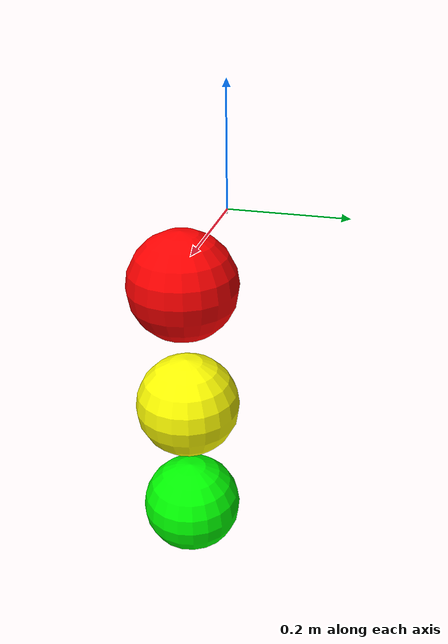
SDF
<?xml version="1.0" ?>
<sdf version="1.6">
  <model name="stop_light">

    <static>true</static>

    <link name="link">

      <collision name="collision">
        <geometry>
          <mesh>
            <uri>model://stop_light/meshes/stop_light.obj</uri>
            <scale>0.001 0.001 0.001</scale>
          </mesh>
        </geometry>
      </collision>

      <visual name="frame">
        <geometry>
          <mesh>
            <uri>model://stop_light/meshes/stop_light.obj</uri>
            <scale>0.0001 0.0001 0.0001</scale>
          </mesh>
        </geometry>
      </visual>

      <visual name="red">
        <pose>-0.001123 -0.082251 -0.147514 0 0 0</pose>
        <geometry>
          <sphere>
            <radius>0.1012</radius>
          </sphere>
        </geometry>
        <material>
          <script>
            <uri>model://stop_light/materials/scripts/</uri>
            <uri>model://stop_light/materials/textures/</uri>
            <name>StopLight/Light</name>
          </script>
          <ambient>1 0 0 1</ambient>
          <specular>1 0 0 1</specular>
          <!-- Turn a light on by uncommenting emissive -->
        </material>
      </visual>

      <visual name="yellow">
        <pose>-0.001123 -0.082251 -0.402 0 0 0</pose>
        <geometry>
          <sphere>
            <radius>0.1012</radius>
          </sphere>
        </geometry>
        <material>
          <script>
            <uri>model://stop_light/materials/scripts/</uri>
            <uri>model://stop_light/materials/textures/</uri>
            <name>StopLight/Light</name>
          </script>
          <ambient>1 1 0 1</ambient>
          <specular>1 1 0 1</specular>
        </material>
      </visual>

      <visual name="green">
        <pose>-0.001123 -0.082251 -0.655 0 0 0</pose>
        <geometry>
          <sphere>
            <radius>0.1012</radius>
          </sphere>
        </geometry>
        <material>
          <script>
            <uri>model://stop_light/materials/scripts/</uri>
            <uri>model://stop_light/materials/textures/</uri>
            <name>StopLight/Light</name>
          </script>
          <ambient>0 1 0 1</ambient>
          <specular>0 1 0 1</specular>
        </material>
      </visual>

    </link>
  </model>
</sdf>
